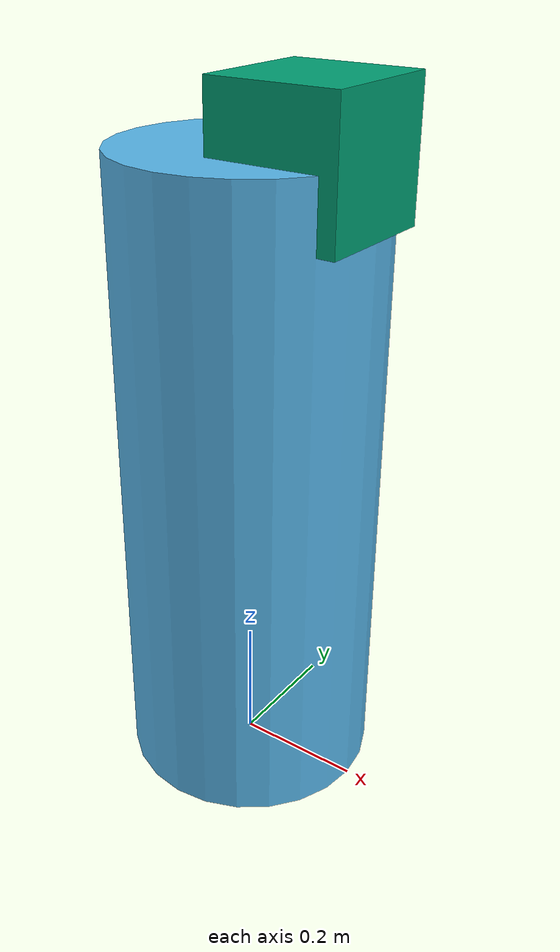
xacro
<?xml version="1.0"?>
<robot name="excavator" xmlns:xacro="http://www.ros.org/wiki/xacro">
  <xacro:property name="height" value="1" />
  <xacro:property name="radius" value="0.2" />
  <xacro:property name="mass" value="1" />

  <xacro:include filename="$(find exc_description)/urdf/exc.gazebo" />

  <link name="world"/>
  <link name="base_link">
    <visual>
      <geometry>
        <cylinder length="${height}" radius="0.2" />
      </geometry>
      <origin xyz="0 0 ${height/2}" />
    </visual>
    <collision>
      <geometry>
        <cylinder length="${height}" radius="0.2" />
      </geometry>
      <origin xyz="0 0 ${height/2}" />
    </collision>
    <inertial>
      <origin xyz="0 0 ${height/2}" rpy="0 0 0"/>
      <mass value="${mass}"/>
      <inertia
        ixx="${mass / 12.0 * (radius*radius*pi + height*height)}" ixy="0.0" ixz="0.0"
        iyy="${mass / 12.0 * (height*height + radius*radius*pi)}" iyz="0.0"
        izz="${mass / 12.0 * (radius*radius*pi + radius*radius*pi)}"/>
      </inertial>
    </link>

    <joint name="fixed" type="fixed">
      <parent link="world"/>
      <child link="base_link"/>
    </joint>

    <link name="camera_link">
      <collision>
        <origin xyz="0 0 0"/>
        <geometry>
          <box size="${radius} ${radius} ${radius}"/>
        </geometry>
      </collision>

      <visual>
        <origin xyz="0 0 0"/>
        <geometry>
          <box size="${radius} ${radius} ${radius}"/>
        </geometry>
      </visual>

      <inertial>
        <mass value="1e-5" />
        <origin xyz="0 0 0" rpy="0 0 0"/>
        <inertia ixx="1e-6" ixy="0" ixz="0" iyy="1e-6" iyz="0" izz="1e-6" />
      </inertial>
    </link>

    <joint name="camera_joint" type="fixed">
      <axis xyz="0 1 0" />
      <origin xyz="${radius/2} 0 ${height}" />
      <parent link="base_link" />
      <child link="camera_link" />
    </joint>
  </robot>
